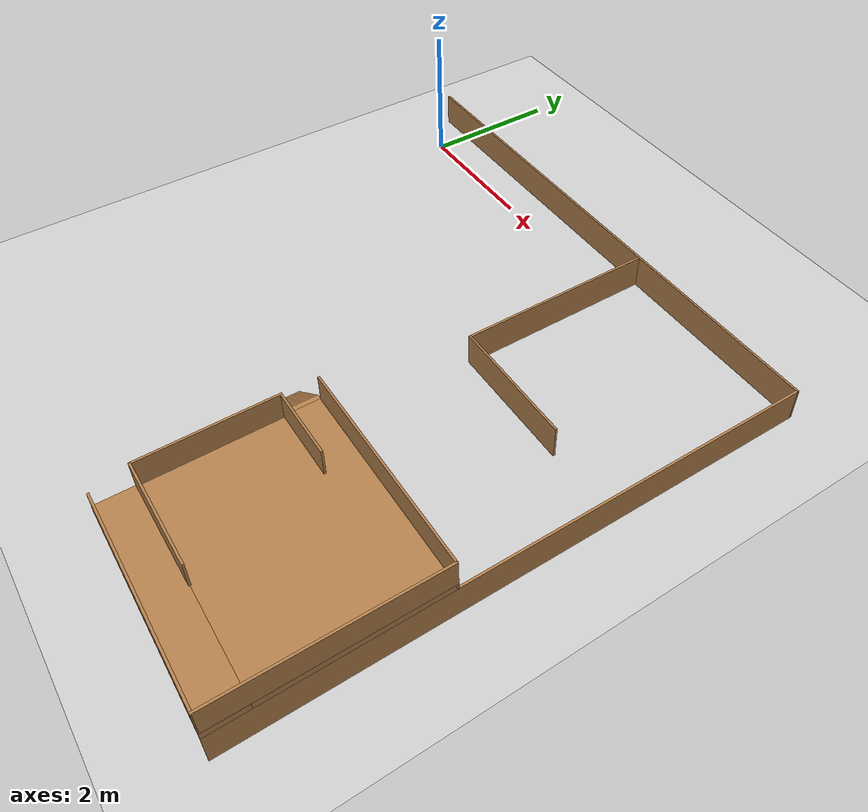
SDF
<sdf version="1.7">
 <world name="default">
  <model name="ground_plane">
   <static>1</static>
   <link name="link">
    <collision name="collision">
     <geometry><plane><normal>0 0 1</normal><size>100 100</size></plane></geometry>
     <surface>
      <contact><collide_bitmask>65535</collide_bitmask></contact>
      <friction><ode><mu>100</mu><mu2>50</mu2></ode></friction>
     </surface>
    </collision>
    <visual name="visual">
     <cast_shadows>0</cast_shadows>
     <geometry><plane><normal>0 0 1</normal><size>100 100</size></plane></geometry>
     <material>
      <script><uri>file://media/materials/scripts/gazebo.material</uri><name>Gazebo/Grey</name></script>
     </material>
    </visual>
   </link>
  </model>
  <model name="arena">
   <pose>3.40282 -3.41988 0 0 0 -1.57675</pose>
   <link name="Floor_6">
    <pose>2.49692 2.49323 0.5 0 -0 0</pose>
    <visual name="Floor_6_Visual_0">
     <pose>-1.42421 0 0.05 0 -0 0</pose>
     <geometry><box><size>0.02684 3.05003 0.1</size></box></geometry>
     <material>
      <script><uri>file://media/materials/scripts/gazebo.material</uri><name>Gazebo/Wood</name></script>
      <ambient>1 1 1 1</ambient>
     </material>
     <meta><layer>1</layer></meta>
    </visual>
    <collision name="Floor_6_Collision_0">
     <geometry><box><size>0.02684 3.05003 0.1</size></box></geometry>
     <pose>-1.42421 0 0.05 0 -0 0</pose>
    </collision>
    <visual name="Floor_6_Visual_1">
     <pose>-0.254024 0.000799 0.05 0 -0 0</pose>
     <geometry><box><size>2.31354 3.04843 0.1</size></box></geometry>
     <material>
      <script><uri>file://media/materials/scripts/gazebo.material</uri><name>Gazebo/Wood</name></script>
      <ambient>1 1 1 1</ambient>
     </material>
     <meta><layer>1</layer></meta>
    </visual>
    <collision name="Floor_6_Collision_1">
     <geometry><box><size>2.31354 3.04843 0.1</size></box></geometry>
     <pose>-0.254024 0.000799 0.05 0 -0 0</pose>
    </collision>
    <visual name="Floor_6_Visual_2">
     <pose>1.17019 0.008605 0.05 0 -0 0</pose>
     <geometry><box><size>0.534887 3.03282 0.1</size></box></geometry>
     <material>
      <script><uri>file://media/materials/scripts/gazebo.material</uri><name>Gazebo/Wood</name></script>
      <ambient>1 1 1 1</ambient>
     </material>
     <meta><layer>1</layer></meta>
    </visual>
    <collision name="Floor_6_Collision_2">
     <geometry><box><size>0.534887 3.03282 0.1</size></box></geometry>
     <pose>1.17019 0.008605 0.05 0 -0 0</pose>
    </collision>
   </link>
   <link name="Stairs_9">
    <visual name="Stairs_9_Visual_0">
     <pose>1.33113 0.294506 0.03 0 0 -3.14159</pose>
     <geometry><box><size>0.49 0.071085 0.06</size></box></geometry>
     <material>
      <script><uri>file://media/materials/scripts/gazebo.material</uri><name>Gazebo/Wood</name></script>
      <ambient>1 1 1 1</ambient>
     </material>
     <meta><layer>0</layer></meta>
    </visual>
    <collision name="Stairs_9_Collision_0">
     <geometry><box><size>0.49 0.071085 0.06</size></box></geometry>
     <pose>1.33113 0.294506 0.03 0 0 -3.14159</pose>
    </collision>
    <visual name="Stairs_9_Visual_1">
     <pose>1.33113 0.365591 0.09 0 0 -3.14159</pose>
     <geometry><box><size>0.49 0.071085 0.06</size></box></geometry>
     <material>
      <script><uri>file://media/materials/scripts/gazebo.material</uri><name>Gazebo/Wood</name></script>
      <ambient>1 1 1 1</ambient>
     </material>
     <meta><layer>0</layer></meta>
    </visual>
    <collision name="Stairs_9_Collision_1">
     <geometry><box><size>0.49 0.071085 0.06</size></box></geometry>
     <pose>1.33113 0.365591 0.09 0 0 -3.14159</pose>
    </collision>
    <visual name="Stairs_9_Visual_2">
     <pose>1.33113 0.436677 0.15 0 0 -3.14159</pose>
     <geometry><box><size>0.49 0.071085 0.06</size></box></geometry>
     <material>
      <script><uri>file://media/materials/scripts/gazebo.material</uri><name>Gazebo/Wood</name></script>
      <ambient>1 1 1 1</ambient>
     </material>
     <meta><layer>0</layer></meta>
    </visual>
    <collision name="Stairs_9_Collision_2">
     <geometry><box><size>0.49 0.071085 0.06</size></box></geometry>
     <pose>1.33113 0.436677 0.15 0 0 -3.14159</pose>
    </collision>
    <visual name="Stairs_9_Visual_3">
     <pose>1.33113 0.507761 0.21 0 0 -3.14159</pose>
     <geometry><box><size>0.49 0.071085 0.06</size></box></geometry>
     <material>
      <script><uri>file://media/materials/scripts/gazebo.material</uri><name>Gazebo/Wood</name></script>
      <ambient>1 1 1 1</ambient>
     </material>
     <meta><layer>0</layer></meta>
    </visual>
    <collision name="Stairs_9_Collision_3">
     <geometry><box><size>0.49 0.071085 0.06</size></box></geometry>
     <pose>1.33113 0.507761 0.21 0 0 -3.14159</pose>
    </collision>
    <visual name="Stairs_9_Visual_4">
     <pose>1.33113 0.578846 0.27 0 0 -3.14159</pose>
     <geometry><box><size>0.49 0.071085 0.06</size></box></geometry>
     <material>
      <script><uri>file://media/materials/scripts/gazebo.material</uri><name>Gazebo/Wood</name></script>
      <ambient>1 1 1 1</ambient>
     </material>
     <meta><layer>0</layer></meta>
    </visual>
    <collision name="Stairs_9_Collision_4">
     <geometry><box><size>0.49 0.071085 0.06</size></box></geometry>
     <pose>1.33113 0.578846 0.27 0 0 -3.14159</pose>
    </collision>
    <visual name="Stairs_9_Visual_5">
     <pose>1.33113 0.649931 0.33 0 0 -3.14159</pose>
     <geometry><box><size>0.49 0.071085 0.06</size></box></geometry>
     <material>
      <script><uri>file://media/materials/scripts/gazebo.material</uri><name>Gazebo/Wood</name></script>
      <ambient>1 1 1 1</ambient>
     </material>
     <meta><layer>0</layer></meta>
    </visual>
    <collision name="Stairs_9_Collision_5">
     <geometry><box><size>0.49 0.071085 0.06</size></box></geometry>
     <pose>1.33113 0.649931 0.33 0 0 -3.14159</pose>
    </collision>
    <visual name="Stairs_9_Visual_6">
     <pose>1.33113 0.721016 0.39 0 0 -3.14159</pose>
     <geometry><box><size>0.49 0.071085 0.06</size></box></geometry>
     <material>
      <script><uri>file://media/materials/scripts/gazebo.material</uri><name>Gazebo/Wood</name></script>
      <ambient>1 1 1 1</ambient>
     </material>
     <meta><layer>0</layer></meta>
    </visual>
    <collision name="Stairs_9_Collision_6">
     <geometry><box><size>0.49 0.071085 0.06</size></box></geometry>
     <pose>1.33113 0.721016 0.39 0 0 -3.14159</pose>
    </collision>
    <visual name="Stairs_9_Visual_7">
     <pose>1.33113 0.792101 0.45 0 0 -3.14159</pose>
     <geometry><box><size>0.49 0.071085 0.06</size></box></geometry>
     <material>
      <script><uri>file://media/materials/scripts/gazebo.material</uri><name>Gazebo/Wood</name></script>
      <ambient>1 1 1 1</ambient>
     </material>
     <meta><layer>0</layer></meta>
    </visual>
    <collision name="Stairs_9_Collision_7">
     <geometry><box><size>0.49 0.071085 0.06</size></box></geometry>
     <pose>1.33113 0.792101 0.45 0 0 -3.14159</pose>
    </collision>
    <visual name="Stairs_9_Visual_8">
     <pose>1.33113 0.863186 0.51 0 0 -3.14159</pose>
     <geometry><box><size>0.49 0.071085 0.06</size></box></geometry>
     <material>
      <script><uri>file://media/materials/scripts/gazebo.material</uri><name>Gazebo/Wood</name></script>
      <ambient>1 1 1 1</ambient>
     </material>
     <meta><layer>0</layer></meta>
    </visual>
    <collision name="Stairs_9_Collision_8">
     <geometry><box><size>0.49 0.071085 0.06</size></box></geometry>
     <pose>1.33113 0.863186 0.51 0 0 -3.14159</pose>
    </collision>
    <visual name="Stairs_9_Visual_9">
     <pose>1.33113 0.934271 0.57 0 0 -3.14159</pose>
     <geometry><box><size>0.49 0.071085 0.06</size></box></geometry>
     <material>
      <script><uri>file://media/materials/scripts/gazebo.material</uri><name>Gazebo/Wood</name></script>
      <ambient>1 1 1 1</ambient>
     </material>
     <meta><layer>0</layer></meta>
    </visual>
    <collision name="Stairs_9_Collision_9">
     <geometry><box><size>0.49 0.071085 0.06</size></box></geometry>
     <pose>1.33113 0.934271 0.57 0 0 -3.14159</pose>
    </collision>
   </link>
   <link name="Wall_0">
    <collision name="Wall_0_Collision">
     <geometry><box><size>8.01401 0.03 0.5</size></box></geometry>
     <pose>0 0 0.25 0 -0 0</pose>
    </collision>
    <visual name="Wall_0_Visual">
     <pose>0 0 0.25 0 -0 0</pose>
     <geometry><box><size>8.01401 0.03 0.5</size></box></geometry>
     <material>
      <script><uri>file://media/materials/scripts/gazebo.material</uri><name>Gazebo/Wood</name></script>
      <ambient>1 1 1 1</ambient>
     </material>
     <meta><layer>0</layer></meta>
    </visual>
    <pose>-3.925 0.006774 0 0 -0 1.57217</pose>
   </link>
   <link name="Wall_1">
    <collision name="Wall_1_Collision">
     <geometry><box><size>7.88 0.03 0.5</size></box></geometry>
     <pose>0 0 0.25 0 -0 0</pose>
    </collision>
    <visual name="Wall_1_Visual">
     <pose>0 0 0.25 0 -0 0</pose>
     <geometry><box><size>7.88 0.03 0.5</size></box></geometry>
     <material>
      <script><uri>file://media/materials/scripts/gazebo.material</uri><name>Gazebo/Wood</name></script>
      <ambient>1 1 1 1</ambient>
     </material>
     <meta><layer>0</layer></meta>
    </visual>
    <pose>-0.0055 3.99877 0 0 -0 0</pose>
   </link>
   <link name="Wall_113">
    <collision name="Wall_113_Collision">
     <geometry><box><size>3.02898 0.03 0.5</size></box></geometry>
     <pose>0 0 0.25 0 -0 0</pose>
    </collision>
    <visual name="Wall_113_Visual">
     <pose>0 0 0.25 0 -0 0</pose>
     <geometry><box><size>3.02898 0.03 0.5</size></box></geometry>
     <material>
      <script><uri>file://media/materials/scripts/gazebo.material</uri><name>Gazebo/Wood</name></script>
      <ambient>1 1 1 1</ambient>
     </material>
     <meta><layer>1</layer></meta>
    </visual>
    <pose>1.07742 2.49626 0.5 0 -0 1.57285</pose>
   </link>
   <link name="Wall_114">
    <collision name="Wall_114_Collision">
     <geometry><box><size>1.02993 0.03 0.5</size></box></geometry>
     <pose>0 0 0.25 0 -0 0</pose>
    </collision>
    <visual name="Wall_114_Visual">
     <pose>0 0 0.25 0 -0 0</pose>
     <geometry><box><size>1.02993 0.03 0.5</size></box></geometry>
     <material>
      <script><uri>file://media/materials/scripts/gazebo.material</uri><name>Gazebo/Wood</name></script>
      <ambient>1 1 1 1</ambient>
     </material>
     <meta><layer>1</layer></meta>
    </visual>
    <pose>1.56924 1.49073 0.5 0 -0 -1.56332</pose>
   </link>
   <link name="Wall_115">
    <collision name="Wall_115_Collision">
     <geometry><box><size>1.52992 0.03 0.5</size></box></geometry>
     <pose>0 0 0.25 0 -0 0</pose>
    </collision>
    <visual name="Wall_115_Visual">
     <pose>0 0 0.25 0 -0 0</pose>
     <geometry><box><size>1.52992 0.03 0.5</size></box></geometry>
     <material>
      <script><uri>file://media/materials/scripts/gazebo.material</uri><name>Gazebo/Wood</name></script>
      <ambient>1 1 1 1</ambient>
     </material>
     <meta><layer>1</layer></meta>
    </visual>
    <pose>3.40324 1.75073 0.5 0 -0 1.57578</pose>
   </link>
   <link name="Wall_116">
    <collision name="Wall_116_Collision">
     <geometry><box><size>1.86403 0.03 0.5</size></box></geometry>
     <pose>0 0 0.25 0 -0 0</pose>
    </collision>
    <visual name="Wall_116_Visual">
     <pose>0 0 0.25 0 -0 0</pose>
     <geometry><box><size>1.86403 0.03 0.5</size></box></geometry>
     <material>
      <script><uri>file://media/materials/scripts/gazebo.material</uri><name>Gazebo/Wood</name></script>
      <ambient>1 1 1 1</ambient>
     </material>
     <meta><layer>1</layer></meta>
    </visual>
    <pose>2.48998 0.988298 0.5 0 -0 0.005453</pose>
   </link>
   <link name="Wall_117">
    <collision name="Wall_117_Collision">
     <geometry><box><size>2.87518 0.03 0.5</size></box></geometry>
     <pose>0 0 0.25 0 -0 0</pose>
    </collision>
    <visual name="Wall_117_Visual">
     <pose>0 0 0.25 0 -0 0</pose>
     <geometry><box><size>2.87518 0.03 0.5</size></box></geometry>
     <material>
      <script><uri>file://media/materials/scripts/gazebo.material</uri><name>Gazebo/Wood</name></script>
      <ambient>1 1 1 1</ambient>
     </material>
     <meta><layer>1</layer></meta>
    </visual>
    <pose>2.49692 4.001 0.5 0 -0 -0.001564</pose>
   </link>
   <link name="Wall_119">
    <collision name="Wall_119_Collision">
     <geometry><box><size>2.88 0.03 0.5</size></box></geometry>
     <pose>0 0 0.25 0 -0 0</pose>
    </collision>
    <visual name="Wall_119_Visual">
     <pose>0 0 0.25 0 -0 0</pose>
     <geometry><box><size>2.88 0.03 0.5</size></box></geometry>
     <material>
      <script><uri>file://media/materials/scripts/gazebo.material</uri><name>Gazebo/Wood</name></script>
      <ambient>1 1 1 1</ambient>
     </material>
     <meta><layer>1</layer></meta>
    </visual>
    <pose>3.9195 2.57377 0.5 0 -0 -1.5708</pose>
   </link>
   <link name="Wall_12">
    <collision name="Wall_12_Collision">
     <geometry><box><size>3 0.03 0.5</size></box></geometry>
     <pose>0 0 0.25 0 -0 0</pose>
    </collision>
    <visual name="Wall_12_Visual">
     <pose>0 0 0.25 0 -0 0</pose>
     <geometry><box><size>3 0.03 0.5</size></box></geometry>
     <material>
      <script><uri>file://media/materials/scripts/gazebo.material</uri><name>Gazebo/Wood</name></script>
      <ambient>1 1 1 1</ambient>
     </material>
     <meta><layer>0</layer></meta>
    </visual>
    <pose>1.0805 2.48177 0 0 -0 1.5708</pose>
   </link>
   <link name="Wall_6">
    <collision name="Wall_6_Collision">
     <geometry><box><size>2.88 0.03 0.5</size></box></geometry>
     <pose>0 0 0.25 0 -0 0</pose>
    </collision>
    <visual name="Wall_6_Visual">
     <pose>0 0 0.25 0 -0 0</pose>
     <geometry><box><size>2.88 0.03 0.5</size></box></geometry>
     <material>
      <script><uri>file://media/materials/scripts/gazebo.material</uri><name>Gazebo/Wood</name></script>
      <ambient>1 1 1 1</ambient>
     </material>
     <meta><layer>0</layer></meta>
    </visual>
    <pose>-2.4945 0.996774 0 0 -0 0</pose>
   </link>
   <link name="Wall_7">
    <collision name="Wall_7_Collision">
     <geometry><box><size>1.88 0.03 0.5</size></box></geometry>
     <pose>0 0 0.25 0 -0 0</pose>
    </collision>
    <visual name="Wall_7_Visual">
     <pose>0 0 0.25 0 -0 0</pose>
     <geometry><box><size>1.88 0.03 0.5</size></box></geometry>
     <material>
      <script><uri>file://media/materials/scripts/gazebo.material</uri><name>Gazebo/Wood</name></script>
      <ambient>1 1 1 1</ambient>
     </material>
     <meta><layer>0</layer></meta>
    </visual>
    <pose>-1.0695 1.92177 0 0 -0 1.5708</pose>
   </link>
   <link name="Wall_71">
    <collision name="Wall_71_Collision">
     <geometry><box><size>2.85865 0.03 0.5</size></box></geometry>
     <pose>0 0 0.25 0 -0 0</pose>
    </collision>
    <visual name="Wall_71_Visual">
     <pose>0 0 0.25 0 -0 0</pose>
     <geometry><box><size>2.85865 0.03 0.5</size></box></geometry>
     <material>
      <script><uri>file://media/materials/scripts/gazebo.material</uri><name>Gazebo/Wood</name></script>
      <ambient>1 1 1 1</ambient>
     </material>
     <meta><layer>0</layer></meta>
    </visual>
    <pose>2.49377 0.998152 0 0 -0 0</pose>
   </link>
   <static>1</static>
  </model>
 </world>
</sdf>
